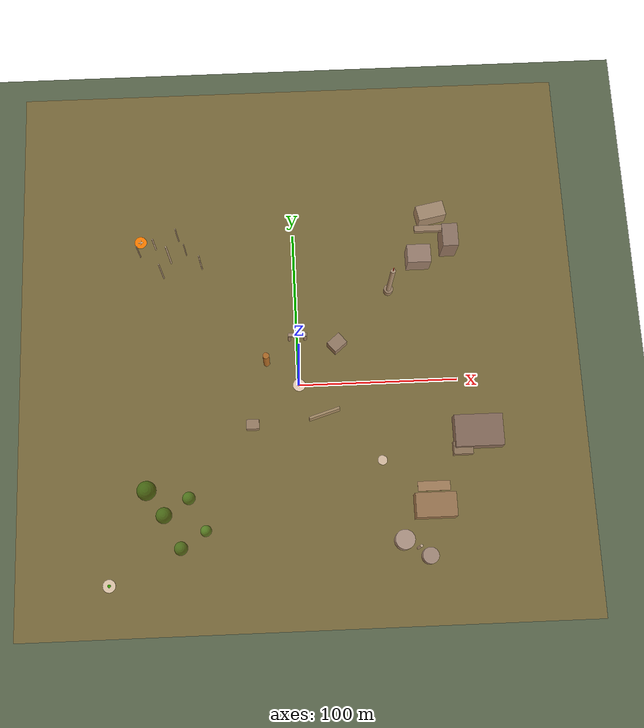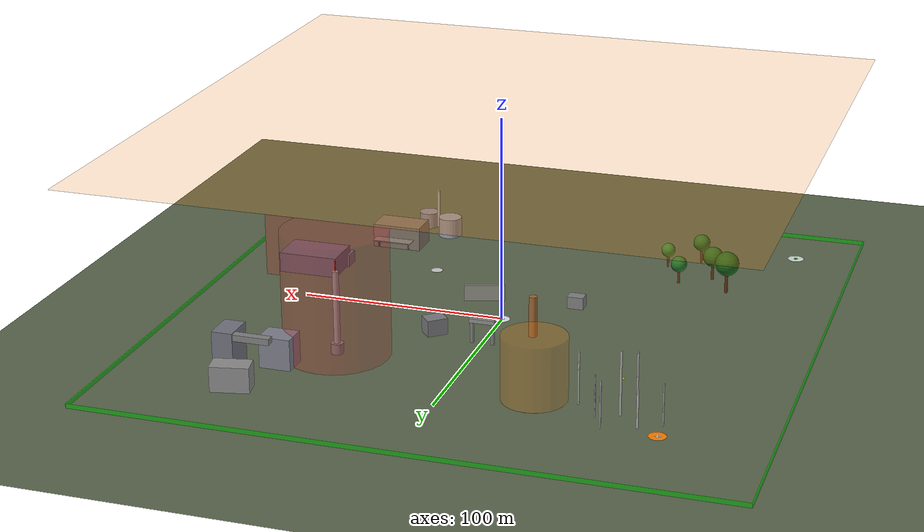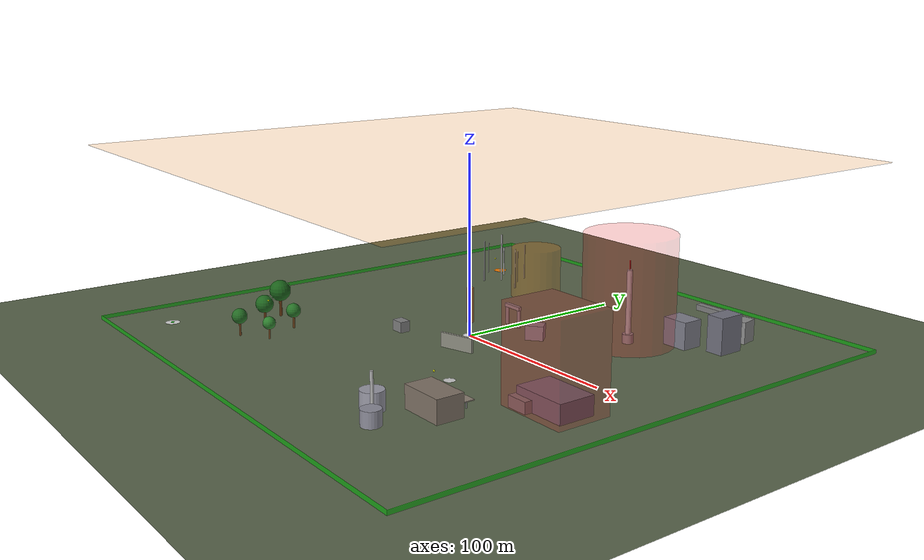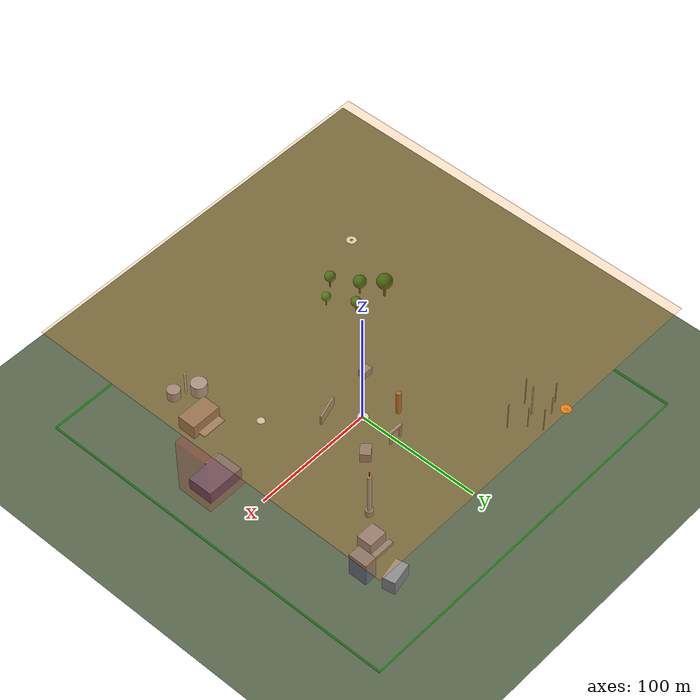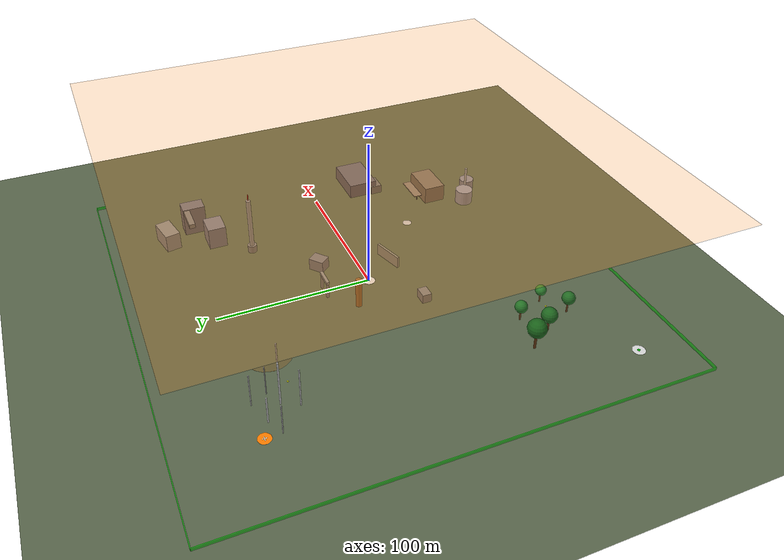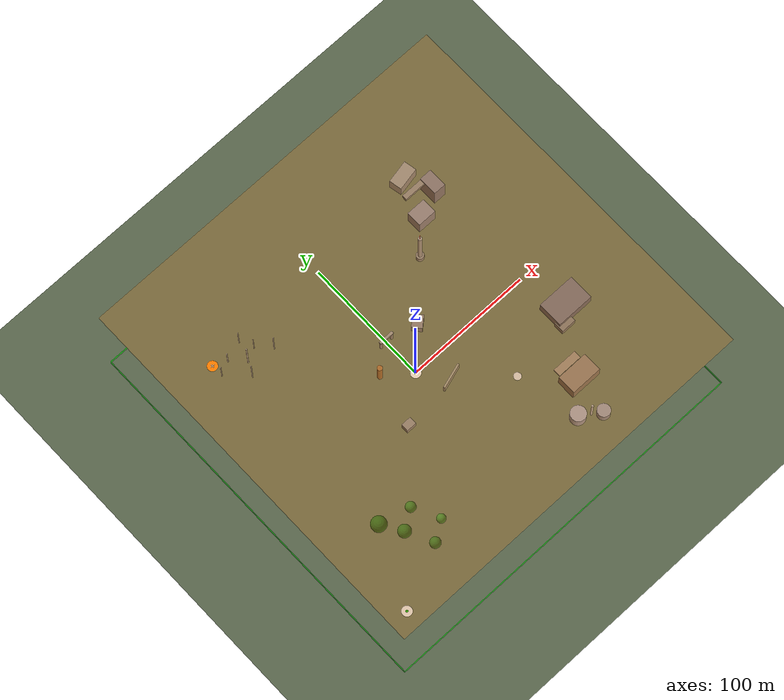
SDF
<sdf version="1.9">
 <world name="flyby_training_v2">
  <model name="ground_plane">
   <static>true</static>
   <link name="link">
    <collision name="collision">
     <geometry><plane><normal>0 0 1</normal><size>500 500</size></plane></geometry>
     <surface>
      <friction><ode><mu>100</mu><mu2>50</mu2></ode></friction>
      <contact><ode><kp>1e+06</kp><kd>100</kd></ode></contact>
     </surface>
    </collision>
    <visual name="visual">
     <geometry><plane><normal>0 0 1</normal><size>500 500</size></plane></geometry>
     <material>
      <ambient>0.35 0.4 0.3 1</ambient>
      <diffuse>0.35 0.4 0.3 1</diffuse>
      <specular>0.1 0.1 0.1 1</specular>
     </material>
    </visual>
   </link>
  </model>
  <model name="geofence_north">
   <static>true</static>
   <pose>0 150 1 0 0 0</pose>
   <link name="link">
    <visual name="visual">
     <geometry><box><size>300 0.5 2</size></box></geometry>
     <material>
      <ambient>0 0.8 0 0.6</ambient>
      <diffuse>0 0.8 0 0.6</diffuse>
      <emissive>0 0.2 0 1</emissive>
     </material>
    </visual>
   </link>
  </model>
  <model name="geofence_south">
   <static>true</static>
   <pose>0 -150 1 0 0 0</pose>
   <link name="link">
    <visual name="visual">
     <geometry><box><size>300 0.5 2</size></box></geometry>
     <material>
      <ambient>0 0.8 0 0.6</ambient>
      <diffuse>0 0.8 0 0.6</diffuse>
      <emissive>0 0.2 0 1</emissive>
     </material>
    </visual>
   </link>
  </model>
  <model name="geofence_east">
   <static>true</static>
   <pose>150 0 1 0 0 0</pose>
   <link name="link">
    <visual name="visual">
     <geometry><box><size>0.5 300 2</size></box></geometry>
     <material>
      <ambient>0 0.8 0 0.6</ambient>
      <diffuse>0 0.8 0 0.6</diffuse>
      <emissive>0 0.2 0 1</emissive>
     </material>
    </visual>
   </link>
  </model>
  <model name="geofence_west">
   <static>true</static>
   <pose>-150 0 1 0 0 0</pose>
   <link name="link">
    <visual name="visual">
     <geometry><box><size>0.5 300 2</size></box></geometry>
     <material>
      <ambient>0 0.8 0 0.6</ambient>
      <diffuse>0 0.8 0 0.6</diffuse>
      <emissive>0 0.2 0 1</emissive>
     </material>
    </visual>
   </link>
  </model>
  <model name="altitude_ceiling">
   <static>true</static>
   <pose>0 0 100 0 0 0</pose>
   <link name="link">
    <visual name="visual">
     <geometry><plane><normal>0 0 -1</normal><size>300 300</size></plane></geometry>
     <material><ambient>1 0.5 0 0.1</ambient><diffuse>1 0.5 0 0.1</diffuse></material>
    </visual>
   </link>
  </model>
  <model name="nfz_1_volume">
   <static>true</static>
   <pose>60 60 30 0 0 0</pose>
   <link name="link">
    <visual name="visual">
     <geometry><cylinder><radius>25</radius><length>60</length></cylinder></geometry>
     <material><ambient>1 0 0 0.2</ambient><diffuse>1 0 0 0.2</diffuse></material>
    </visual>
   </link>
  </model>
  <model name="nfz_1_tower">
   <static>true</static>
   <pose>60 60 20 0 0 0</pose>
   <link name="link">
    <visual name="tower_base">
     <pose>0 0 -17.5 0 0 0</pose>
     <geometry><cylinder><radius>3</radius><length>5</length></cylinder></geometry>
     <material><ambient>0.5 0.5 0.5 1</ambient><diffuse>0.5 0.5 0.5 1</diffuse></material>
    </visual>
    <visual name="tower_main">
     <geometry><cylinder><radius>1.5</radius><length>40</length></cylinder></geometry>
     <material><ambient>0.6 0.6 0.6 1</ambient><diffuse>0.6 0.6 0.6 1</diffuse></material>
    </visual>
    <visual name="tower_antenna">
     <pose>0 0 22.5 0 0 0</pose>
     <geometry><cylinder><radius>0.3</radius><length>5</length></cylinder></geometry>
     <material><ambient>0.8 0.1 0.1 1</ambient><diffuse>0.8 0.1 0.1 1</diffuse></material>
    </visual>
    <collision name="collision">
     <geometry><cylinder><radius>2</radius><length>40</length></cylinder></geometry>
    </collision>
   </link>
  </model>
  <model name="nfz_2_volume">
   <static>true</static>
   <pose>110 -35 25 0 0 0</pose>
   <link name="link">
    <visual name="visual">
     <geometry><box><size>40 30 50</size></box></geometry>
     <material><ambient>1 0 0 0.2</ambient><diffuse>1 0 0 0.2</diffuse></material>
    </visual>
   </link>
  </model>
  <model name="nfz_2_main_building">
   <static>true</static>
   <pose>110 -35 5 0 0 0</pose>
   <link name="link">
    <visual name="visual">
     <geometry><box><size>30 20 10</size></box></geometry>
     <material><ambient>0.4 0.4 0.45 1</ambient><diffuse>0.4 0.4 0.45 1</diffuse></material>
    </visual>
    <collision name="collision"><geometry><box><size>30 20 10</size></box></geometry></collision>
   </link>
  </model>
  <model name="nfz_2_secondary_building">
   <static>true</static>
   <pose>100 -45 3 0 0 0</pose>
   <link name="link">
    <visual name="visual">
     <geometry><box><size>12 8 6</size></box></geometry>
     <material><ambient>0.45 0.45 0.45 1</ambient><diffuse>0.45 0.45 0.45 1</diffuse></material>
    </visual>
    <collision name="collision"><geometry><box><size>12 8 6</size></box></geometry></collision>
   </link>
  </model>
  <model name="nfz_3_volume">
   <static>true</static>
   <pose>-40 80 15 0 0 0</pose>
   <link name="link">
    <visual name="visual">
     <geometry><cylinder><radius>15</radius><length>30</length></cylinder></geometry>
     <material><ambient>1 0.5 0 0.25</ambient><diffuse>1 0.5 0 0.25</diffuse></material>
    </visual>
   </link>
  </model>
  <model name="nfz_3_marker">
   <static>true</static>
   <pose>-40 80 0.05 0 0 0</pose>
   <link name="link">
    <visual name="visual">
     <geometry><cylinder><radius>15</radius><length>0.1</length></cylinder></geometry>
     <material><ambient>1 0.5 0 0.8</ambient><diffuse>1 0.5 0 0.8</diffuse></material>
    </visual>
   </link>
  </model>
  <model name="building_a1">
   <static>true</static>
   <pose>80 80 7.5 0 0 0</pose>
   <link name="link">
    <visual name="visual">
     <geometry><box><size>15 12 15</size></box></geometry>
     <material><ambient>0.5 0.5 0.55 1</ambient><diffuse>0.5 0.5 0.55 1</diffuse></material>
    </visual>
    <collision name="collision"><geometry><box><size>15 12 15</size></box></geometry></collision>
   </link>
  </model>
  <model name="building_a2">
   <static>true</static>
   <pose>100 90 10 0 0 0</pose>
   <link name="link">
    <visual name="visual">
     <geometry><box><size>10 15 20</size></box></geometry>
     <material><ambient>0.45 0.45 0.5 1</ambient><diffuse>0.45 0.45 0.5 1</diffuse></material>
    </visual>
    <collision name="collision"><geometry><box><size>10 15 20</size></box></geometry></collision>
   </link>
  </model>
  <model name="building_a3">
   <static>true</static>
   <pose>90 110 6 0 0 0.2</pose>
   <link name="link">
    <visual name="visual">
     <geometry><box><size>18 10 12</size></box></geometry>
     <material><ambient>0.55 0.55 0.55 1</ambient><diffuse>0.55 0.55 0.55 1</diffuse></material>
    </visual>
    <collision name="collision"><geometry><box><size>18 10 12</size></box></geometry></collision>
   </link>
  </model>
  <model name="overhang_a1">
   <static>true</static>
   <pose>90 95 18 0 0 0</pose>
   <link name="link">
    <visual name="visual">
     <geometry><box><size>25 4 3</size></box></geometry>
     <material><ambient>0.5 0.5 0.5 1</ambient><diffuse>0.5 0.5 0.5 1</diffuse></material>
    </visual>
    <collision name="collision"><geometry><box><size>25 4 3</size></box></geometry></collision>
   </link>
  </model>
  <model name="pole_b1">
   <static>true</static>
   <pose>-60 80 12.5 0 0 0</pose>
   <link name="link">
    <visual name="visual">
     <geometry><cylinder><radius>0.4</radius><length>25</length></cylinder></geometry>
     <material><ambient>0.7 0.7 0.7 1</ambient><diffuse>0.7 0.7 0.7 1</diffuse></material>
    </visual>
    <collision name="collision">
     <geometry><cylinder><radius>0.4</radius><length>25</length></cylinder></geometry>
    </collision>
   </link>
  </model>
  <model name="pole_b2">
   <static>true</static>
   <pose>-70 90 10 0 0 0</pose>
   <link name="link">
    <visual name="visual">
     <geometry><cylinder><radius>0.3</radius><length>20</length></cylinder></geometry>
     <material><ambient>0.65 0.65 0.65 1</ambient><diffuse>0.65 0.65 0.65 1</diffuse></material>
    </visual>
    <collision name="collision">
     <geometry><cylinder><radius>0.3</radius><length>20</length></cylinder></geometry>
    </collision>
   </link>
  </model>
  <model name="pole_b3">
   <static>true</static>
   <pose>-80 85 15 0 0 0</pose>
   <link name="link">
    <visual name="visual">
     <geometry><cylinder><radius>0.5</radius><length>30</length></cylinder></geometry>
     <material><ambient>0.7 0.7 0.7 1</ambient><diffuse>0.7 0.7 0.7 1</diffuse></material>
    </visual>
    <collision name="collision">
     <geometry><cylinder><radius>0.5</radius><length>30</length></cylinder></geometry>
    </collision>
   </link>
  </model>
  <model name="pole_b4">
   <static>true</static>
   <pose>-75 100 11 0 0 0</pose>
   <link name="link">
    <visual name="visual">
     <geometry><cylinder><radius>0.35</radius><length>22</length></cylinder></geometry>
     <material><ambient>0.68 0.68 0.68 1</ambient><diffuse>0.68 0.68 0.68 1</diffuse></material>
    </visual>
    <collision name="collision">
     <geometry><cylinder><radius>0.35</radius><length>22</length></cylinder></geometry>
    </collision>
   </link>
  </model>
  <model name="pole_b5">
   <static>true</static>
   <pose>-90 95 9 0 0 0</pose>
   <link name="link">
    <visual name="visual">
     <geometry><cylinder><radius>0.45</radius><length>18</length></cylinder></geometry>
     <material><ambient>0.72 0.72 0.72 1</ambient><diffuse>0.72 0.72 0.72 1</diffuse></material>
    </visual>
    <collision name="collision">
     <geometry><cylinder><radius>0.45</radius><length>18</length></cylinder></geometry>
    </collision>
   </link>
  </model>
  <model name="pole_b6">
   <static>true</static>
   <pose>-85 75 13 0 0 0</pose>
   <link name="link">
    <visual name="visual">
     <geometry><cylinder><radius>0.4</radius><length>26</length></cylinder></geometry>
     <material><ambient>0.7 0.7 0.7 1</ambient><diffuse>0.7 0.7 0.7 1</diffuse></material>
    </visual>
    <collision name="collision">
     <geometry><cylinder><radius>0.4</radius><length>26</length></cylinder></geometry>
    </collision>
   </link>
  </model>
  <model name="pole_b7">
   <static>true</static>
   <pose>-100 90 10 0 0 0</pose>
   <link name="link">
    <visual name="visual">
     <geometry><cylinder><radius>0.35</radius><length>20</length></cylinder></geometry>
     <material><ambient>0.65 0.65 0.65 1</ambient><diffuse>0.65 0.65 0.65 1</diffuse></material>
    </visual>
    <collision name="collision">
     <geometry><cylinder><radius>0.35</radius><length>20</length></cylinder></geometry>
    </collision>
   </link>
  </model>
  <model name="tree_c1">
   <static>true</static>
   <pose>-70 -70 0 0 0 0</pose>
   <link name="link">
    <visual name="trunk">
     <pose>0 0 4 0 0 0</pose>
     <geometry><cylinder><radius>0.6</radius><length>8</length></cylinder></geometry>
     <material><ambient>0.4 0.25 0.1 1</ambient><diffuse>0.4 0.25 0.1 1</diffuse></material>
    </visual>
    <visual name="canopy">
     <pose>0 0 10 0 0 0</pose>
     <geometry><sphere><radius>4</radius></sphere></geometry>
     <material><ambient>0.15 0.45 0.15 1</ambient><diffuse>0.15 0.45 0.15 1</diffuse></material>
    </visual>
    <collision name="collision">
     <pose>0 0 6 0 0 0</pose>
     <geometry><cylinder><radius>4</radius><length>12</length></cylinder></geometry>
    </collision>
   </link>
  </model>
  <model name="tree_c2">
   <static>true</static>
   <pose>-85 -80 0 0 0 0</pose>
   <link name="link">
    <visual name="trunk">
     <pose>0 0 5 0 0 0</pose>
     <geometry><cylinder><radius>0.7</radius><length>10</length></cylinder></geometry>
     <material><ambient>0.38 0.22 0.08 1</ambient><diffuse>0.38 0.22 0.08 1</diffuse></material>
    </visual>
    <visual name="canopy">
     <pose>0 0 12 0 0 0</pose>
     <geometry><sphere><radius>5</radius></sphere></geometry>
     <material><ambient>0.12 0.4 0.12 1</ambient><diffuse>0.12 0.4 0.12 1</diffuse></material>
    </visual>
    <collision name="collision">
     <pose>0 0 7 0 0 0</pose>
     <geometry><cylinder><radius>5</radius><length>14</length></cylinder></geometry>
    </collision>
   </link>
  </model>
  <model name="tree_c3">
   <static>true</static>
   <pose>-60 -90 0 0 0 0</pose>
   <link name="link">
    <visual name="trunk">
     <pose>0 0 3.5 0 0 0</pose>
     <geometry><cylinder><radius>0.5</radius><length>7</length></cylinder></geometry>
     <material><ambient>0.42 0.27 0.12 1</ambient><diffuse>0.42 0.27 0.12 1</diffuse></material>
    </visual>
    <visual name="canopy">
     <pose>0 0 9 0 0 0</pose>
     <geometry><sphere><radius>3.5</radius></sphere></geometry>
     <material><ambient>0.18 0.5 0.18 1</ambient><diffuse>0.18 0.5 0.18 1</diffuse></material>
    </visual>
    <collision name="collision">
     <pose>0 0 5.5 0 0 0</pose>
     <geometry><cylinder><radius>3.5</radius><length>11</length></cylinder></geometry>
    </collision>
   </link>
  </model>
  <model name="tree_c4">
   <static>true</static>
   <pose>-95 -65 0 0 0 0</pose>
   <link name="link">
    <visual name="trunk">
     <pose>0 0 6 0 0 0</pose>
     <geometry><cylinder><radius>0.8</radius><length>12</length></cylinder></geometry>
     <material><ambient>0.36 0.2 0.06 1</ambient><diffuse>0.36 0.2 0.06 1</diffuse></material>
    </visual>
    <visual name="canopy">
     <pose>0 0 15 0 0 0</pose>
     <geometry><sphere><radius>6</radius></sphere></geometry>
     <material><ambient>0.1 0.38 0.1 1</ambient><diffuse>0.1 0.38 0.1 1</diffuse></material>
    </visual>
    <collision name="collision">
     <pose>0 0 9 0 0 0</pose>
     <geometry><cylinder><radius>6</radius><length>18</length></cylinder></geometry>
    </collision>
   </link>
  </model>
  <model name="tree_c5">
   <static>true</static>
   <pose>-75 -100 0 0 0 0</pose>
   <link name="link">
    <visual name="trunk">
     <pose>0 0 4.5 0 0 0</pose>
     <geometry><cylinder><radius>0.55</radius><length>9</length></cylinder></geometry>
     <material><ambient>0.4 0.24 0.1 1</ambient><diffuse>0.4 0.24 0.1 1</diffuse></material>
    </visual>
    <visual name="canopy">
     <pose>0 0 11 0 0 0</pose>
     <geometry><sphere><radius>4.2</radius></sphere></geometry>
     <material><ambient>0.14 0.42 0.14 1</ambient><diffuse>0.14 0.42 0.14 1</diffuse></material>
    </visual>
    <collision name="collision">
     <pose>0 0 6.5 0 0 0</pose>
     <geometry><cylinder><radius>4.2</radius><length>13</length></cylinder></geometry>
    </collision>
   </link>
  </model>
  <model name="warehouse_d1">
   <static>true</static>
   <pose>80 -80 6 0 0 0</pose>
   <link name="link">
    <visual name="main">
     <geometry><box><size>25 15 12</size></box></geometry>
     <material><ambient>0.5 0.45 0.4 1</ambient><diffuse>0.5 0.45 0.4 1</diffuse></material>
    </visual>
    <collision name="collision"><geometry><box><size>25 15 12</size></box></geometry></collision>
   </link>
  </model>
  <model name="loading_dock_d1">
   <static>true</static>
   <pose>80 -68 4 0 0 0</pose>
   <link name="link">
    <visual name="roof">
     <pose>0 0 2 0 0 0</pose>
     <geometry><box><size>20 6 0.5</size></box></geometry>
     <material><ambient>0.55 0.5 0.45 1</ambient><diffuse>0.55 0.5 0.45 1</diffuse></material>
    </visual>
    <visual name="pillar_1">
     <pose>-8 0 0 0 0 0</pose>
     <geometry><cylinder><radius>0.4</radius><length>4</length></cylinder></geometry>
     <material><ambient>0.4 0.4 0.4 1</ambient><diffuse>0.4 0.4 0.4 1</diffuse></material>
    </visual>
    <visual name="pillar_2">
     <pose>8 0 0 0 0 0</pose>
     <geometry><cylinder><radius>0.4</radius><length>4</length></cylinder></geometry>
     <material><ambient>0.4 0.4 0.4 1</ambient><diffuse>0.4 0.4 0.4 1</diffuse></material>
    </visual>
    <collision name="roof_collision">
     <pose>0 0 2 0 0 0</pose>
     <geometry><box><size>20 6 0.5</size></box></geometry>
    </collision>
    <collision name="pillar_1_collision">
     <pose>-8 0 0 0 0 0</pose>
     <geometry><cylinder><radius>0.4</radius><length>4</length></cylinder></geometry>
    </collision>
    <collision name="pillar_2_collision">
     <pose>8 0 0 0 0 0</pose>
     <geometry><cylinder><radius>0.4</radius><length>4</length></cylinder></geometry>
    </collision>
   </link>
  </model>
  <model name="tank_d1">
   <static>true</static>
   <pose>60 -100 5 0 0 0</pose>
   <link name="link">
    <visual name="visual">
     <geometry><cylinder><radius>6</radius><length>10</length></cylinder></geometry>
     <material><ambient>0.6 0.6 0.65 1</ambient><diffuse>0.6 0.6 0.65 1</diffuse></material>
    </visual>
    <collision name="collision">
     <geometry><cylinder><radius>6</radius><length>10</length></cylinder></geometry>
    </collision>
   </link>
  </model>
  <model name="tank_d2">
   <static>true</static>
   <pose>75 -110 4 0 0 0</pose>
   <link name="link">
    <visual name="visual">
     <geometry><cylinder><radius>5</radius><length>8</length></cylinder></geometry>
     <material><ambient>0.55 0.55 0.6 1</ambient><diffuse>0.55 0.55 0.6 1</diffuse></material>
    </visual>
    <collision name="collision">
     <geometry><cylinder><radius>5</radius><length>8</length></cylinder></geometry>
    </collision>
   </link>
  </model>
  <model name="pipe_bridge_d1">
   <static>true</static>
   <pose>68 -105 12 0 0 0.5</pose>
   <link name="link">
    <visual name="visual">
     <geometry><cylinder><radius>0.8</radius><length>20</length></cylinder></geometry>
     <material><ambient>0.7 0.7 0.7 1</ambient><diffuse>0.7 0.7 0.7 1</diffuse></material>
    </visual>
    <collision name="collision">
     <geometry><cylinder><radius>0.8</radius><length>20</length></cylinder></geometry>
    </collision>
   </link>
  </model>
  <model name="pillar_e1">
   <static>true</static>
   <pose>-20 15 10 0 0 0</pose>
   <link name="link">
    <visual name="visual">
     <geometry><cylinder><radius>2</radius><length>20</length></cylinder></geometry>
     <material><ambient>0.6 0.4 0.2 1</ambient><diffuse>0.6 0.4 0.2 1</diffuse></material>
    </visual>
    <collision name="collision">
     <geometry><cylinder><radius>2</radius><length>20</length></cylinder></geometry>
    </collision>
   </link>
  </model>
  <model name="wall_e1">
   <static>true</static>
   <pose>15 -20 4 0 0 0.3</pose>
   <link name="link">
    <visual name="visual">
     <geometry><box><size>20 1.5 8</size></box></geometry>
     <material><ambient>0.55 0.55 0.5 1</ambient><diffuse>0.55 0.55 0.5 1</diffuse></material>
    </visual>
    <collision name="collision"><geometry><box><size>20 1.5 8</size></box></geometry></collision>
   </link>
  </model>
  <model name="box_e1">
   <static>true</static>
   <pose>-30 -25 3 0 0 0</pose>
   <link name="link">
    <visual name="visual">
     <geometry><box><size>8 6 6</size></box></geometry>
     <material><ambient>0.5 0.5 0.5 1</ambient><diffuse>0.5 0.5 0.5 1</diffuse></material>
    </visual>
    <collision name="collision"><geometry><box><size>8 6 6</size></box></geometry></collision>
   </link>
  </model>
  <model name="box_e2">
   <static>true</static>
   <pose>25 25 4 0 0 0.7</pose>
   <link name="link">
    <visual name="visual">
     <geometry><box><size>10 8 8</size></box></geometry>
     <material><ambient>0.48 0.48 0.5 1</ambient><diffuse>0.48 0.48 0.5 1</diffuse></material>
    </visual>
    <collision name="collision"><geometry><box><size>10 8 8</size></box></geometry></collision>
   </link>
  </model>
  <model name="arch_e1">
   <static>true</static>
   <pose>0 30 0 0 0 0</pose>
   <link name="link">
    <visual name="pillar_left">
     <pose>-5 0 5 0 0 0</pose>
     <geometry><cylinder><radius>1</radius><length>10</length></cylinder></geometry>
     <material><ambient>0.5 0.5 0.5 1</ambient><diffuse>0.5 0.5 0.5 1</diffuse></material>
    </visual>
    <visual name="pillar_right">
     <pose>5 0 5 0 0 0</pose>
     <geometry><cylinder><radius>1</radius><length>10</length></cylinder></geometry>
     <material><ambient>0.5 0.5 0.5 1</ambient><diffuse>0.5 0.5 0.5 1</diffuse></material>
    </visual>
    <visual name="beam">
     <pose>0 0 11 0 0 0</pose>
     <geometry><box><size>12 2 2</size></box></geometry>
     <material><ambient>0.55 0.55 0.55 1</ambient><diffuse>0.55 0.55 0.55 1</diffuse></material>
    </visual>
    <collision name="pillar_left_collision">
     <pose>-5 0 5 0 0 0</pose>
     <geometry><cylinder><radius>1</radius><length>10</length></cylinder></geometry>
    </collision>
    <collision name="pillar_right_collision">
     <pose>5 0 5 0 0 0</pose>
     <geometry><cylinder><radius>1</radius><length>10</length></cylinder></geometry>
    </collision>
    <collision name="beam_collision">
     <pose>0 0 11 0 0 0</pose>
     <geometry><box><size>12 2 2</size></box></geometry>
    </collision>
   </link>
  </model>
  <model name="landing_zone_primary">
   <static>true</static>
   <pose>0 0 0.02 0 0 0</pose>
   <link name="link">
    <visual name="pad">
     <geometry><cylinder><radius>4</radius><length>0.04</length></cylinder></geometry>
     <material><ambient>0.9 0.9 0.9 1</ambient><diffuse>0.9 0.9 0.9 1</diffuse></material>
    </visual>
    <visual name="H_vertical">
     <pose>0 0 0.02 0 0 0</pose>
     <geometry><box><size>0.6 2.5 0.01</size></box></geometry>
     <material><ambient>0 0 0.8 1</ambient><diffuse>0 0 0.8 1</diffuse></material>
    </visual>
    <visual name="H_horizontal">
     <pose>0 0 0.02 0 0 0</pose>
     <geometry><box><size>2.5 0.6 0.01</size></box></geometry>
     <material><ambient>0 0 0.8 1</ambient><diffuse>0 0 0.8 1</diffuse></material>
    </visual>
    <collision name="collision">
     <geometry><cylinder><radius>4</radius><length>0.04</length></cylinder></geometry>
    </collision>
   </link>
  </model>
  <model name="landing_zone_secondary">
   <static>true</static>
   <pose>-120 -120 0.02 0 0 0</pose>
   <link name="link">
    <visual name="pad">
     <geometry><cylinder><radius>4</radius><length>0.04</length></cylinder></geometry>
     <material><ambient>0.85 0.85 0.85 1</ambient><diffuse>0.85 0.85 0.85 1</diffuse></material>
    </visual>
    <visual name="marker">
     <pose>0 0 0.02 0 0 0</pose>
     <geometry><cylinder><radius>1</radius><length>0.01</length></cylinder></geometry>
     <material><ambient>0 0.6 0 1</ambient><diffuse>0 0.6 0 1</diffuse></material>
    </visual>
   </link>
  </model>
  <model name="landing_zone_emergency">
   <static>true</static>
   <pose>-100 100 0.02 0 0 0</pose>
   <link name="link">
    <visual name="pad">
     <geometry><cylinder><radius>4</radius><length>0.04</length></cylinder></geometry>
     <material><ambient>1 0.5 0 1</ambient><diffuse>1 0.5 0 1</diffuse></material>
    </visual>
    <visual name="cross_1">
     <pose>0 0 0.02 0 0 0</pose>
     <geometry><box><size>3 0.5 0.01</size></box></geometry>
     <material><ambient>1 1 1 1</ambient><diffuse>1 1 1 1</diffuse></material>
    </visual>
    <visual name="cross_2">
     <pose>0 0 0.02 0 0 0</pose>
     <geometry><box><size>0.5 3 0.01</size></box></geometry>
     <material><ambient>1 1 1 1</ambient><diffuse>1 1 1 1</diffuse></material>
    </visual>
   </link>
  </model>
  <model name="landing_zone_forward">
   <static>true</static>
   <pose>50 -50 0.02 0 0 0</pose>
   <link name="link">
    <visual name="pad">
     <geometry><cylinder><radius>3</radius><length>0.04</length></cylinder></geometry>
     <material><ambient>0.8 0.8 0.8 1</ambient><diffuse>0.8 0.8 0.8 1</diffuse></material>
    </visual>
   </link>
  </model>
  <model name="waypoint_marker_1">
   <static>true</static>
   <pose>-80 -80 15 0 0 0</pose>
   <link name="link">
    <visual name="visual">
     <geometry><sphere><radius>0.5</radius></sphere></geometry>
     <material><ambient>1 1 0 0.8</ambient><diffuse>1 1 0 0.8</diffuse><emissive>0.5 0.5 0 1</emissive></material>
    </visual>
   </link>
  </model>
  <model name="waypoint_marker_2">
   <static>true</static>
   <pose>80 -80 20 0 0 0</pose>
   <link name="link">
    <visual name="visual">
     <geometry><sphere><radius>0.5</radius></sphere></geometry>
     <material><ambient>1 1 0 0.8</ambient><diffuse>1 1 0 0.8</diffuse><emissive>0.5 0.5 0 1</emissive></material>
    </visual>
   </link>
  </model>
  <model name="waypoint_marker_3">
   <static>true</static>
   <pose>-80 80 15 0 0 0</pose>
   <link name="link">
    <visual name="visual">
     <geometry><sphere><radius>0.5</radius></sphere></geometry>
     <material><ambient>1 1 0 0.8</ambient><diffuse>1 1 0 0.8</diffuse><emissive>0.5 0.5 0 1</emissive></material>
    </visual>
   </link>
  </model>
  <model name="waypoint_marker_4">
   <static>true</static>
   <pose>0 0 30 0 0 0</pose>
   <link name="link">
    <visual name="visual">
     <geometry><sphere><radius>0.5</radius></sphere></geometry>
     <material><ambient>1 1 0 0.8</ambient><diffuse>1 1 0 0.8</diffuse><emissive>0.5 0.5 0 1</emissive></material>
    </visual>
   </link>
  </model>
  <include><uri>model://iris_with_ardupilot</uri><name>iris</name><pose>0 0 0.5 0 0 0</pose></include>
 </world>
</sdf>
